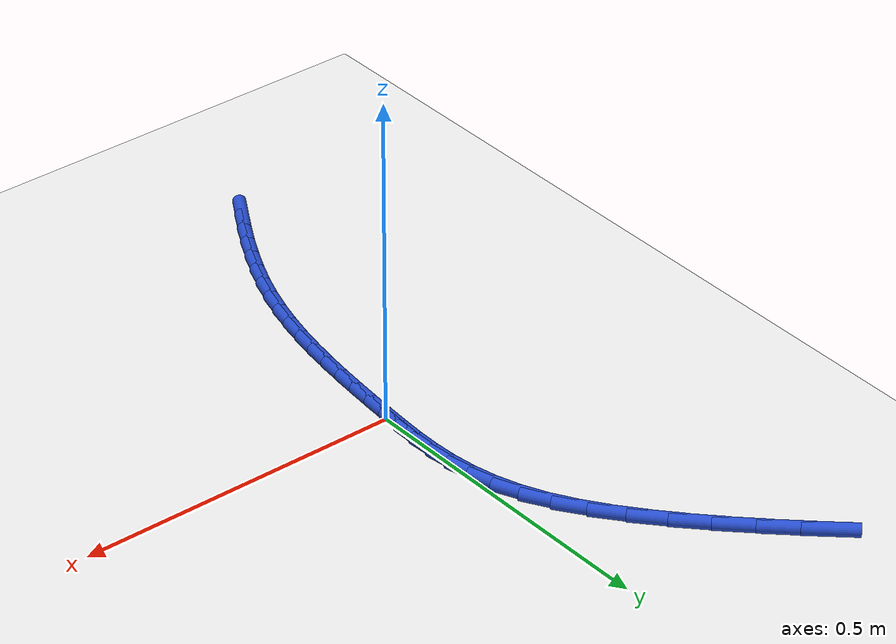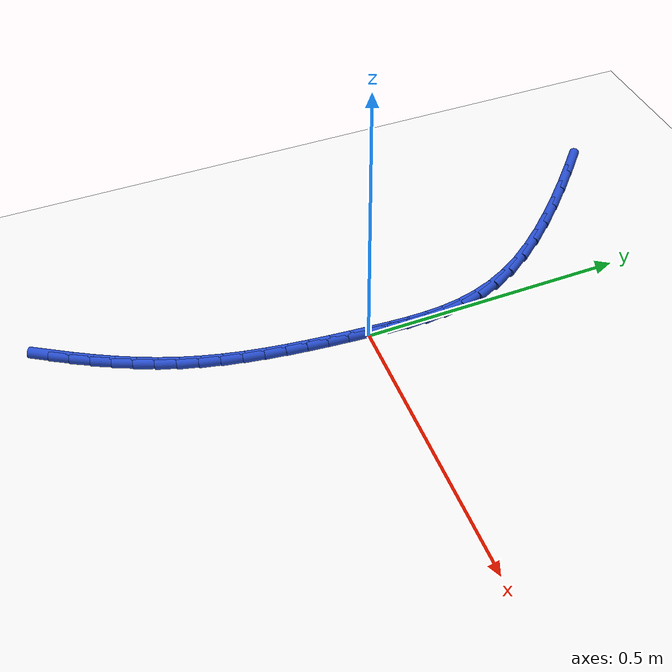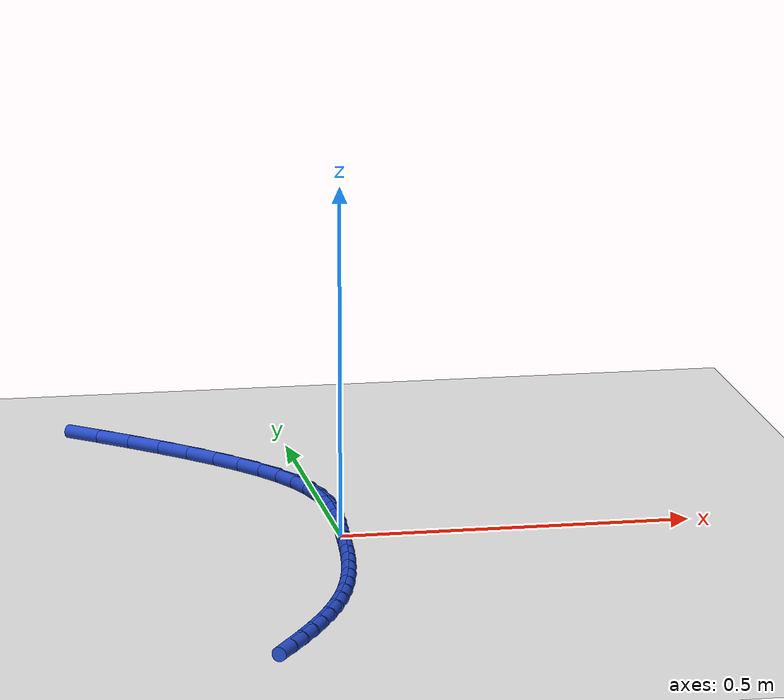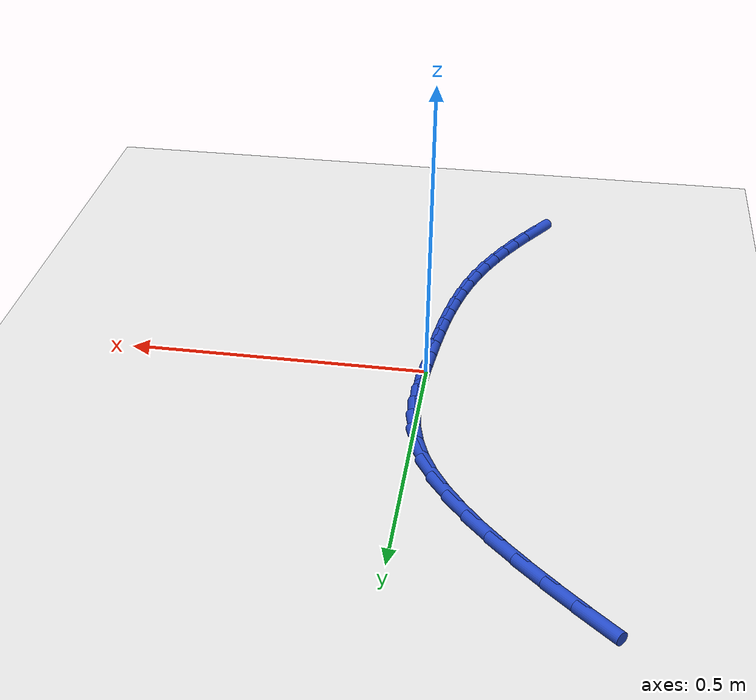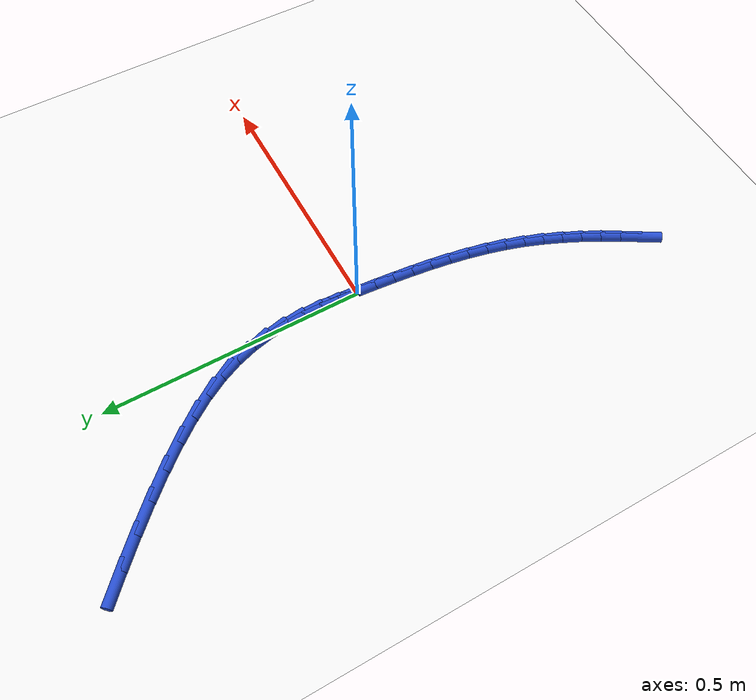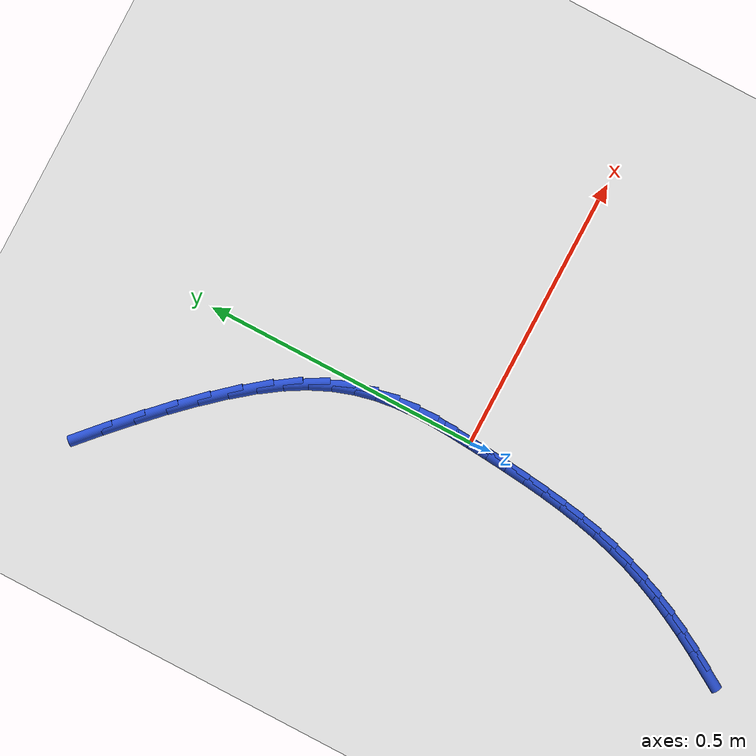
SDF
<sdf version="1.6">
 <world name="default">
  <model name="ground_plane">
   <static>1</static>
   <link name="link">
    <collision name="collision">
     <geometry><plane><normal>0 0 1</normal><size>100 100</size></plane></geometry>
     <surface><friction><ode><mu>100</mu><mu2>50</mu2></ode></friction></surface>
    </collision>
    <visual name="visual">
     <cast_shadows>0</cast_shadows>
     <geometry><plane><normal>0 0 1</normal><size>100 100</size></plane></geometry>
     <material>
      <script><uri>file://media/materials/scripts/gazebo.material</uri><name>Gazebo/WhiteGlow</name></script>
     </material>
    </visual>
   </link>
  </model>
  <model name="line">
   <link name="link_0">
    <pose>2.8189256484623115e-17 4.85722573273506e-17 0.01 0 1.57 1.498070655885138</pose>
    <collision name="collision">
     <geometry><cylinder><radius>0.01</radius><length>0.08</length></cylinder></geometry>
    </collision>
    <visual name="visual">
     <material>
      <script><name>Gazebo/Blue</name><uri>file://media/materials/scripts/gazebo.material</uri></script>
     </material>
     <geometry><cylinder><radius>0.01</radius><length>0.08</length></cylinder></geometry>
    </visual>
   </link>
   <link name="link_1">
    <pose>0.002651591724945382 0.03639588698109935 0.01 0 1.57 1.521089725528869</pose>
    <collision name="collision">
     <geometry><cylinder><radius>0.01</radius><length>0.08</length></cylinder></geometry>
    </collision>
    <visual name="visual">
     <material>
      <script><name>Gazebo/Blue</name><uri>file://media/materials/scripts/gazebo.material</uri></script>
     </material>
     <geometry><cylinder><radius>0.01</radius><length>0.08</length></cylinder></geometry>
    </visual>
   </link>
   <link name="link_2">
    <pose>0.00444813783874525 0.07250912387801663 0.01 0 1.57 1.5635480753023947</pose>
    <collision name="collision">
     <geometry><cylinder><radius>0.01</radius><length>0.08</length></cylinder></geometry>
    </collision>
    <visual name="visual">
     <material>
      <script><name>Gazebo/Blue</name><uri>file://media/materials/scripts/gazebo.material</uri></script>
     </material>
     <geometry><cylinder><radius>0.01</radius><length>0.08</length></cylinder></geometry>
    </visual>
   </link>
   <link name="link_3">
    <pose>0.004709261461088529 0.10853423278882578 0.01 0 1.57 -1.516750078653827</pose>
    <collision name="collision">
     <geometry><cylinder><radius>0.01</radius><length>0.08</length></cylinder></geometry>
    </collision>
    <visual name="visual">
     <material>
      <script><name>Gazebo/Blue</name><uri>file://media/materials/scripts/gazebo.material</uri></script>
     </material>
     <geometry><cylinder><radius>0.01</radius><length>0.08</length></cylinder></geometry>
    </visual>
   </link>
   <link name="link_4">
    <pose>0.0027545857116641082 0.14466573581160083 0.01 0 1.57 -1.4384282908039918</pose>
    <collision name="collision">
     <geometry><cylinder><radius>0.01</radius><length>0.08</length></cylinder></geometry>
    </collision>
    <visual name="visual">
     <material>
      <script><name>Gazebo/Blue</name><uri>file://media/materials/scripts/gazebo.material</uri></script>
     </material>
     <geometry><cylinder><radius>0.01</radius><length>0.08</length></cylinder></geometry>
    </visual>
   </link>
   <link name="link_5">
    <pose>-0.0020962662898391174 0.1810981550444158 0.01 0 1.57 -1.3464261265264865</pose>
    <collision name="collision">
     <geometry><cylinder><radius>0.01</radius><length>0.08</length></cylinder></geometry>
    </collision>
    <visual name="visual">
     <material>
      <script><name>Gazebo/Blue</name><uri>file://media/materials/scripts/gazebo.material</uri></script>
     </material>
     <geometry><cylinder><radius>0.01</radius><length>0.08</length></cylinder></geometry>
    </visual>
   </link>
   <link name="link_6">
    <pose>-0.010523671423732239 0.21802601258534443 0.01 0 1.57 -1.2455792006755915</pose>
    <collision name="collision">
     <geometry><cylinder><radius>0.01</radius><length>0.08</length></cylinder></geometry>
    </collision>
    <visual name="visual">
     <material>
      <script><name>Gazebo/Blue</name><uri>file://media/materials/scripts/gazebo.material</uri></script>
     </material>
     <geometry><cylinder><radius>0.01</radius><length>0.08</length></cylinder></geometry>
    </visual>
   </link>
   <link name="link_7">
    <pose>-0.023208006570326407 0.2556438305324609 0.01 0 1.57 -1.1415760457312654</pose>
    <collision name="collision">
     <geometry><cylinder><radius>0.01</radius><length>0.08</length></cylinder></geometry>
    </collision>
    <visual name="visual">
     <material>
      <script><name>Gazebo/Blue</name><uri>file://media/materials/scripts/gazebo.material</uri></script>
     </material>
     <geometry><cylinder><radius>0.01</radius><length>0.08</length></cylinder></geometry>
    </visual>
   </link>
   <link name="link_8">
    <pose>-0.04082964860993267 0.29414613098383907 0.01 0 1.57 -1.0408057589957405</pose>
    <collision name="collision">
     <geometry><cylinder><radius>0.01</radius><length>0.08</length></cylinder></geometry>
    </collision>
    <visual name="visual">
     <material>
      <script><name>Gazebo/Blue</name><uri>file://media/materials/scripts/gazebo.material</uri></script>
     </material>
     <geometry><cylinder><radius>0.01</radius><length>0.08</length></cylinder></geometry>
    </visual>
   </link>
   <link name="link_9">
    <pose>-0.06400849119661083 0.3337069277028687 0.01 0 1.57 -0.9573538914795601</pose>
    <collision name="collision">
     <geometry><cylinder><radius>0.01</radius><length>0.08</length></cylinder></geometry>
    </collision>
    <visual name="visual">
     <material>
      <script><name>Gazebo/Blue</name><uri>file://media/materials/scripts/gazebo.material</uri></script>
     </material>
     <geometry><cylinder><radius>0.01</radius><length>0.08</length></cylinder></geometry>
    </visual>
   </link>
   <link name="link_10">
    <pose>-0.09253004297143363 0.374217315565136 0.01 0 1.57 -0.8941933568819888</pose>
    <collision name="collision">
     <geometry><cylinder><radius>0.01</radius><length>0.08</length></cylinder></geometry>
    </collision>
    <visual name="visual">
     <material>
      <script><name>Gazebo/Blue</name><uri>file://media/materials/scripts/gazebo.material</uri></script>
     </material>
     <geometry><cylinder><radius>0.01</radius><length>0.08</length></cylinder></geometry>
    </visual>
   </link>
   <link name="link_11">
    <pose>-0.12557180764105716 0.4153622303264594 0.01 0 1.57 -0.8458727699029034</pose>
    <collision name="collision">
     <geometry><cylinder><radius>0.01</radius><length>0.08</length></cylinder></geometry>
    </collision>
    <visual name="visual">
     <material>
      <script><name>Gazebo/Blue</name><uri>file://media/materials/scripts/gazebo.material</uri></script>
     </material>
     <geometry><cylinder><radius>0.01</radius><length>0.08</length></cylinder></geometry>
    </visual>
   </link>
   <link name="link_12">
    <pose>-0.16229750834467258 0.45682193510022123 0.01 0 1.57 -0.8086130680567273</pose>
    <collision name="collision">
     <geometry><cylinder><radius>0.01</radius><length>0.08</length></cylinder></geometry>
    </collision>
    <visual name="visual">
     <material>
      <script><name>Gazebo/Blue</name><uri>file://media/materials/scripts/gazebo.material</uri></script>
     </material>
     <geometry><cylinder><radius>0.01</radius><length>0.08</length></cylinder></geometry>
    </visual>
   </link>
   <link name="link_13">
    <pose>-0.2018708682214711 0.4982766929998031 0.01 0 1.57 -0.7799014036705338</pose>
    <collision name="collision">
     <geometry><cylinder><radius>0.01</radius><length>0.08</length></cylinder></geometry>
    </collision>
    <visual name="visual">
     <material>
      <script><name>Gazebo/Blue</name><uri>file://media/materials/scripts/gazebo.material</uri></script>
     </material>
     <geometry><cylinder><radius>0.01</radius><length>0.08</length></cylinder></geometry>
    </visual>
   </link>
   <link name="link_14">
    <pose>-0.24345561041064387 0.5394067671385868 0.01 0 1.57 -0.7580858329796094</pose>
    <collision name="collision">
     <geometry><cylinder><radius>0.01</radius><length>0.08</length></cylinder></geometry>
    </collision>
    <visual name="visual">
     <material>
      <script><name>Gazebo/Blue</name><uri>file://media/materials/scripts/gazebo.material</uri></script>
     </material>
     <geometry><cylinder><radius>0.01</radius><length>0.08</length></cylinder></geometry>
    </visual>
   </link>
   <link name="link_15">
    <pose>-0.2862154580513819 0.579892420629954 0.01 0 1.57 -0.7421284941975217</pose>
    <collision name="collision">
     <geometry><cylinder><radius>0.01</radius><length>0.08</length></cylinder></geometry>
    </collision>
    <visual name="visual">
     <material>
      <script><name>Gazebo/Blue</name><uri>file://media/materials/scripts/gazebo.material</uri></script>
     </material>
     <geometry><cylinder><radius>0.01</radius><length>0.08</length></cylinder></geometry>
    </visual>
   </link>
   <link name="link_185">
    <pose>-0.1548263014872024 -0.5311942000393397 0.01 0 1.57 1.0310338972893898</pose>
    <collision name="collision">
     <geometry><cylinder><radius>0.01</radius><length>0.08</length></cylinder></geometry>
    </collision>
    <visual name="visual">
     <material>
      <script><name>Gazebo/Blue</name><uri>file://media/materials/scripts/gazebo.material</uri></script>
     </material>
     <geometry><cylinder><radius>0.01</radius><length>0.08</length></cylinder></geometry>
    </visual>
   </link>
   <link name="link_186">
    <pose>-0.13540634042093777 -0.49877933987166095 0.01 0 1.57 1.0577532314230331</pose>
    <collision name="collision">
     <geometry><cylinder><radius>0.01</radius><length>0.08</length></cylinder></geometry>
    </collision>
    <visual name="visual">
     <material>
      <script><name>Gazebo/Blue</name><uri>file://media/materials/scripts/gazebo.material</uri></script>
     </material>
     <geometry><cylinder><radius>0.01</radius><length>0.08</length></cylinder></geometry>
    </visual>
   </link>
   <link name="link_187">
    <pose>-0.11699036373104643 -0.46608984886472077 0.01 0 1.57 1.0892275815936536</pose>
    <collision name="collision">
     <geometry><cylinder><radius>0.01</radius><length>0.08</length></cylinder></geometry>
    </collision>
    <visual name="visual">
     <material>
      <script><name>Gazebo/Blue</name><uri>file://media/materials/scripts/gazebo.material</uri></script>
     </material>
     <geometry><cylinder><radius>0.01</radius><length>0.08</length></cylinder></geometry>
    </visual>
   </link>
   <link name="link_188">
    <pose>-0.09971835319026806 -0.4330400999149447 0.01 0 1.57 1.1254585660173557</pose>
    <collision name="collision">
     <geometry><cylinder><radius>0.01</radius><length>0.08</length></cylinder></geometry>
    </collision>
    <visual name="visual">
     <material>
      <script><name>Gazebo/Blue</name><uri>file://media/materials/scripts/gazebo.material</uri></script>
     </material>
     <geometry><cylinder><radius>0.01</radius><length>0.08</length></cylinder></geometry>
    </visual>
   </link>
   <link name="link_189">
    <pose>-0.08373029057134251 -0.3995444659187591 0.01 0 1.57 1.1663746228851977</pose>
    <collision name="collision">
     <geometry><cylinder><radius>0.01</radius><length>0.08</length></cylinder></geometry>
    </collision>
    <visual name="visual">
     <material>
      <script><name>Gazebo/Blue</name><uri>file://media/materials/scripts/gazebo.material</uri></script>
     </material>
     <geometry><cylinder><radius>0.01</radius><length>0.08</length></cylinder></geometry>
    </visual>
   </link>
   <link name="link_190">
    <pose>-0.06916615764700952 -0.3655173197725896 0.01 0 1.57 1.211807676523499</pose>
    <collision name="collision">
     <geometry><cylinder><radius>0.01</radius><length>0.08</length></cylinder></geometry>
    </collision>
    <visual name="visual">
     <material>
      <script><name>Gazebo/Blue</name><uri>file://media/materials/scripts/gazebo.material</uri></script>
     </material>
     <geometry><cylinder><radius>0.01</radius><length>0.08</length></cylinder></geometry>
    </visual>
   </link>
   <link name="link_191">
    <pose>-0.05616593619000893 -0.33087303437286253 0.01 0 1.57 1.2613764136033894</pose>
    <collision name="collision">
     <geometry><cylinder><radius>0.01</radius><length>0.08</length></cylinder></geometry>
    </collision>
    <visual name="visual">
     <material>
      <script><name>Gazebo/Blue</name><uri>file://media/materials/scripts/gazebo.material</uri></script>
     </material>
     <geometry><cylinder><radius>0.01</radius><length>0.08</length></cylinder></geometry>
    </visual>
   </link>
   <link name="link_192">
    <pose>-0.044866583587658715 -0.2955280977774604 0.01 0 1.57 1.3105716353601147</pose>
    <collision name="collision">
     <geometry><cylinder><radius>0.01</radius><length>0.08</length></cylinder></geometry>
    </collision>
    <visual name="visual">
     <material>
      <script><name>Gazebo/Blue</name><uri>file://media/materials/scripts/gazebo.material</uri></script>
     </material>
     <geometry><cylinder><radius>0.01</radius><length>0.08</length></cylinder></geometry>
    </visual>
   </link>
   <link name="link_193">
    <pose>-0.03527161996027995 -0.2594923199343496 0.01 0 1.57 1.3537077086360003</pose>
    <collision name="collision">
     <geometry><cylinder><radius>0.01</radius><length>0.08</length></cylinder></geometry>
    </collision>
    <visual name="visual">
     <material>
      <script><name>Gazebo/Blue</name><uri>file://media/materials/scripts/gazebo.material</uri></script>
     </material>
     <geometry><cylinder><radius>0.01</radius><length>0.08</length></cylinder></geometry>
    </visual>
   </link>
   <link name="link_194">
    <pose>-0.027201445112136007 -0.22290357946670766 0.01 0 1.57 1.3906293711135391</pose>
    <collision name="collision">
     <geometry><cylinder><radius>0.01</radius><length>0.08</length></cylinder></geometry>
    </collision>
    <visual name="visual">
     <material>
      <script><name>Gazebo/Blue</name><uri>file://media/materials/scripts/gazebo.material</uri></script>
     </material>
     <geometry><cylinder><radius>0.01</radius><length>0.08</length></cylinder></geometry>
    </visual>
   </link>
   <link name="link_195">
    <pose>-0.020463184750598242 -0.1859090384897899 0.01 0 1.57 1.4216112267118046</pose>
    <collision name="collision">
     <geometry><cylinder><radius>0.01</radius><length>0.08</length></cylinder></geometry>
    </collision>
    <visual name="visual">
     <material>
      <script><name>Gazebo/Blue</name><uri>file://media/materials/scripts/gazebo.material</uri></script>
     </material>
     <geometry><cylinder><radius>0.01</radius><length>0.08</length></cylinder></geometry>
    </visual>
   </link>
   <link name="link_196">
    <pose>-0.014863964583038026 -0.1486558591188517 0.01 0 1.57 1.446903240116883</pose>
    <collision name="collision">
     <geometry><cylinder><radius>0.01</radius><length>0.08</length></cylinder></geometry>
    </collision>
    <visual name="visual">
     <material>
      <script><name>Gazebo/Blue</name><uri>file://media/materials/scripts/gazebo.material</uri></script>
     </material>
     <geometry><cylinder><radius>0.01</radius><length>0.08</length></cylinder></geometry>
    </visual>
   </link>
   <link name="link_197">
    <pose>-0.01021091031682673 -0.11129120346914831 0.01 0 1.57 1.4667037811426606</pose>
    <collision name="collision">
     <geometry><cylinder><radius>0.01</radius><length>0.08</length></cylinder></geometry>
    </collision>
    <visual name="visual">
     <material>
      <script><name>Gazebo/Blue</name><uri>file://media/materials/scripts/gazebo.material</uri></script>
     </material>
     <geometry><cylinder><radius>0.01</radius><length>0.08</length></cylinder></geometry>
    </visual>
   </link>
   <link name="link_198">
    <pose>-0.006311147659335717 -0.07396223365593511 0.01 0 1.57 1.481139780515703</pose>
    <collision name="collision">
     <geometry><cylinder><radius>0.01</radius><length>0.08</length></cylinder></geometry>
    </collision>
    <visual name="visual">
     <material>
      <script><name>Gazebo/Blue</name><uri>file://media/materials/scripts/gazebo.material</uri></script>
     </material>
     <geometry><cylinder><radius>0.01</radius><length>0.08</length></cylinder></geometry>
    </visual>
   </link>
   <link name="link_199">
    <pose>-0.002971802317936345 -0.03681611179446726 0.01 0 1.57 1.490250805029718</pose>
    <collision name="collision">
     <geometry><cylinder><radius>0.01</radius><length>0.08</length></cylinder></geometry>
    </collision>
    <visual name="visual">
     <material>
      <script><name>Gazebo/Blue</name><uri>file://media/materials/scripts/gazebo.material</uri></script>
     </material>
     <geometry><cylinder><radius>0.01</radius><length>0.08</length></cylinder></geometry>
    </visual>
   </link>
   <link name="link_200">
    <pose>1.2576745200831851e-17 -1.3877787807814457e-16 0.01 0 1.57 1.4939743579737554</pose>
    <collision name="collision">
     <geometry><cylinder><radius>0.01</radius><length>0.08</length></cylinder></geometry>
    </collision>
    <visual name="visual">
     <material>
      <script><name>Gazebo/Blue</name><uri>file://media/materials/scripts/gazebo.material</uri></script>
     </material>
     <geometry><cylinder><radius>0.01</radius><length>0.08</length></cylinder></geometry>
    </visual>
   </link>
   <link name="link_201">
    <pose>0.0027971335871020547 0.03633893961221182 0.01 0 1.57 1.4939743579737557</pose>
    <collision name="collision">
     <geometry><cylinder><radius>0.01</radius><length>0.08</length></cylinder></geometry>
    </collision>
    <visual name="visual">
     <material>
      <script><name>Gazebo/Blue</name><uri>file://media/materials/scripts/gazebo.material</uri></script>
     </material>
     <geometry><cylinder><radius>0.01</radius><length>0.08</length></cylinder></geometry>
    </visual>
   </link>
  </model>
 </world>
</sdf>
